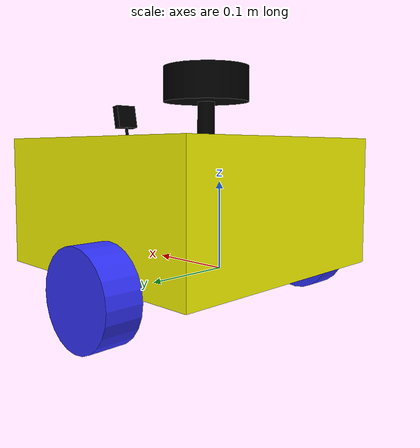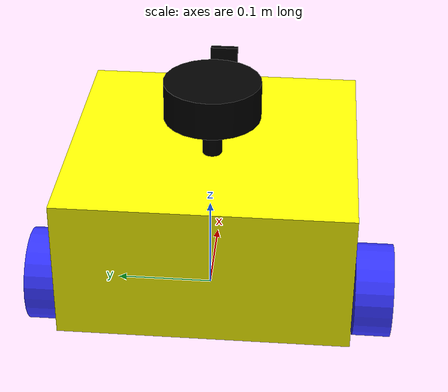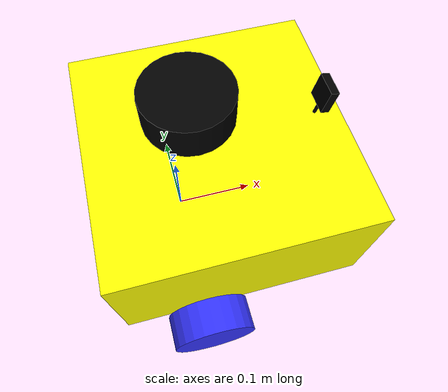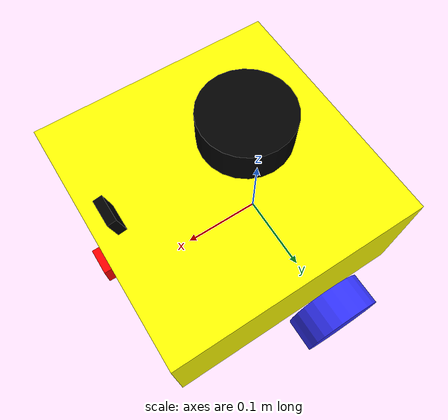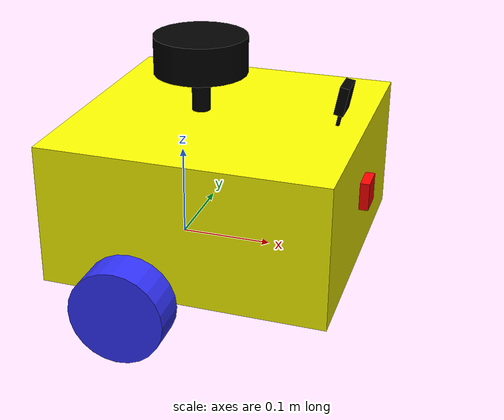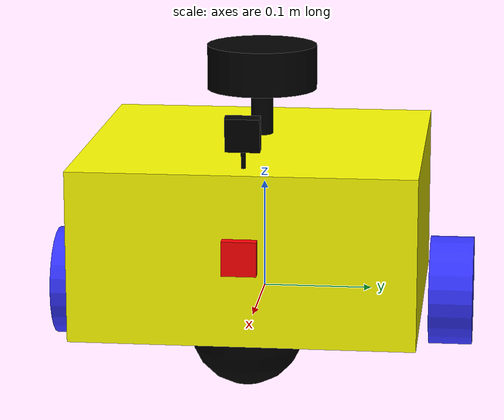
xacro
<?xml version="1.0"?>
<robot xmlns:xacro="http://www.ros.org/wiki/xacro"  name="robot">

    <xacro:include filename="robot_core.xacro" />

    <xacro:include filename="gazebo_control.xacro"/>

    <xacro:include filename="lidar.xacro"/>

    <xacro:include filename="rgb_camera.xacro"/>

    <xacro:include filename="depth_camera.xacro"/>

</robot>

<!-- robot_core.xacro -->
<robot xmlns:xacro="http://www.ros.org/wiki/xacro" >

    <xacro:include filename="inertial_macros.xacro"/>

    <material name="white">
        <color rgba="1 1 1 1" />
    </material>

    <material name="orange">
        <color rgba="1 0.3 0.1 1" />
    </material>

    <material name="blue">
        <color rgba="0.2 0.2 1 1" />
    </material>

    <material name="black">
        <color rgba="0 0 0 1" />
    </material>

    <material name="red">
        <color rgba="1 0 0 1" />
    </material>

    <material name="yellow">
        <color rgba="1 1 0 1" />
    </material>

    <!-- BASE LINK -->

    <link name="base_link">

    </link>

    <!-- BASE_FOOTPRINT LINK -->

    <joint name="base_footprint_joint" type="fixed">
        <parent link="base_link"/>
        <child link="base_footprint"/>
        <origin xyz="0 0 0" rpy="0 0 0"/>
    </joint>

    <link name="base_footprint">

    </link>

    <!-- CHASSIS LINK -->

    <joint name="chassis_joint" type="fixed">
        <parent link="base_link"/>
        <child link="chassis"/>
        <origin xyz="-0.1 0 0"/>
    </joint>

    <link name="chassis">
        <visual>
            <origin xyz="0.15 0 0.075"/>
            <geometry>
                <box size="0.3 0.3 0.15"/>
            </geometry>
            <material name="yellow"/>
        </visual>
        <collision>
            <origin xyz="0.15 0 0.075"/>
            <geometry>
                <box size="0.3 0.3 0.15"/>
            </geometry>
        </collision>
        <xacro:inertial_box mass="0.5" x="0.3" y="0.3" z="0.15">
            <origin xyz="0.15 0 0.075" rpy="0 0 0"/>
        </xacro:inertial_box>
    </link>

    <gazebo reference="chassis">
        <material>Gazebo/Yellow</material>
    </gazebo>

    <!-- LEFT WHEEL LINK -->

    <joint name="left_wheel_joint" type="continuous">
        <parent link="base_link"/>
        <child link="left_wheel"/>
        <origin xyz="0 0.175 0" rpy="-${pi/2} 0 0"/>
        <axis xyz="0 0 1"/>
    </joint>

    <link name="left_wheel">
        <visual>
            <geometry>
                <cylinder radius="0.05" length="0.04"/>
            </geometry>
            <material name="blue"/>
        </visual>
        <collision>
            <geometry>
                <cylinder radius="0.05" length="0.04"/>
            </geometry>
        </collision>
        <xacro:inertial_cylinder mass="0.1" length="0.04" radius="0.05">
            <origin xyz="0 0 0" rpy="0 0 0"/>
        </xacro:inertial_cylinder>
    </link>

    <gazebo reference="left_wheel">
        <material>Gazebo/Blue</material>
    </gazebo>

    <!-- RIGHT WHEEL LINK -->

    <joint name="right_wheel_joint" type="continuous">
        <parent link="base_link"/>
        <child link="right_wheel"/>
        <origin xyz="0 -0.175 0" rpy="${pi/2} 0 0"/>
        <axis xyz="0 0 -1"/>
    </joint>

    <link name="right_wheel">
        <visual>
            <geometry>
                <cylinder radius="0.05" length="0.04"/>
            </geometry>
            <material name="blue"/>
        </visual>
        <collision>
            <geometry>
                <cylinder radius="0.05" length="0.04"/>
            </geometry>
        </collision>
        <xacro:inertial_cylinder mass="0.1" length="0.04" radius="0.05">
            <origin xyz="0 0 0" rpy="0 0 0"/>
        </xacro:inertial_cylinder>
    </link>

    <gazebo reference="right_wheel">
        <material>Gazebo/Blue</material>
    </gazebo>

    <!-- CASTER WHEEL LINK -->

    <joint name="caster_wheel_joint" type="fixed">
        <parent link="chassis"/>
        <child link="caster_wheel"/>
        <origin xyz="0.24 0 0"/>
    </joint>

    <link name="caster_wheel">
        <visual>
            <geometry>
                <sphere radius="0.05"/>
            </geometry>
            <material name="black"/>
        </visual>
        <collision>
            <geometry>
                <sphere radius="0.05"/>
            </geometry>
        </collision>
        <xacro:inertial_sphere mass="0.1" radius="0.05">
            <origin xyz="0 0 0" rpy="0 0 0"/>
        </xacro:inertial_sphere>
    </link>

    <gazebo reference="caster_wheel">
        <material>Gazebo/Black</material>
        <mu1 value="0.001"/>
        <mu2 value="0.001"/>
    </gazebo>

</robot>

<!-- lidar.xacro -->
<robot xmlns:xacro="http://www.ros.org/wiki/xacro" >

    <joint name="laser_joint" type="fixed">
        <parent link="chassis"/>
        <child link="laser_frame"/>
        <origin xyz="0.122 0 0.212" rpy="0 0 0"/>
    </joint>

    <link name="laser_frame">
        <visual>
            <geometry>
                <cylinder radius="0.05" length="0.04"/>
            </geometry>
            <material name="black"/>
        </visual>
        <visual>
            <origin xyz="0 0 -0.05"/>
            <geometry>
                <cylinder radius="0.01" length="0.1"/>
            </geometry>
            <material name="black"/>
        </visual>
        <collision>
            <geometry>
                <cylinder radius="0.05" length="0.04"/>
            </geometry>
        </collision>
        <xacro:inertial_cylinder mass="0.1" length="0.04" radius="0.05">
            <origin xyz="0 0 0" rpy="0 0 0"/>
        </xacro:inertial_cylinder>
    </link>

    <gazebo reference="laser_frame">
        <material>Gazebo/Black</material>

        <sensor name="laser" type="gpu_lidar">
            <pose> 0 0 0 0 0 0 </pose>
            <visualize>false</visualize>
            <update_rate>10</update_rate>
            <lidar>
                <scan>
                    <horizontal>
                        <samples>360</samples>
                        <min_angle>-3.14</min_angle>
                        <max_angle>3.14</max_angle>
                    </horizontal>
                </scan>
                <range>
                    <min>0.3</min>
                    <max>12</max>
                </range>
            </lidar>
            <topic>scan</topic>
            <gz_frame_id>laser_frame</gz_frame_id>
        </sensor>
    </gazebo>

</robot>

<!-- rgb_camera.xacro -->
<robot xmlns:xacro="http://www.ros.org/wiki/xacro" >

    <joint name="rgb_camera_joint" type="fixed">
        <parent link="chassis"/>
        <child link="rgb_camera_link"/>
        <origin xyz="0.276 0 0.181" rpy="0 0.18 0"/>
    </joint>

    <link name="rgb_camera_link">
        <visual>
            <geometry>
                <box size="0.010 0.03 0.03"/>
            </geometry>
            <material name="black"/>
        </visual>
        <visual>
            <origin xyz="0 0 -0.05"/>
            <geometry>
                <cylinder radius="0.002" length="0.1"/>
            </geometry>
            <material name="black"/>
        </visual>
    </link>

    <joint name="rgb_camera_optical_joint" type="fixed">
        <parent link="rgb_camera_link"/>
        <child link="rgb_camera_link_optical"/>
        <origin xyz="0 0 0" rpy="${-pi/2} 0 ${-pi/2}"/>
    </joint>

    <link name="rgb_camera_link_optical"></link>

    <gazebo reference="rgb_camera_link">
        <material>Gazebo/Black</material>

        <sensor name="rgb_camera" type="camera">
            <pose> 0 0 0 0 0 0 </pose>
            <visualize>true</visualize>
            <update_rate>10</update_rate>
            <camera>
                <camera_info_topic>rgb_camera/camera_info</camera_info_topic>
                <horizontal_fov>1.089</horizontal_fov>
                <image>
                    <format>R8G8B8</format>
                    <width>640</width>
                    <height>480</height>
                </image>
                <clip>
                    <near>0.05</near>
                    <far>8.0</far>
                </clip>
            </camera>
            <topic>rgb_camera/image_raw</topic>
            <gz_frame_id>rgb_camera_link_optical</gz_frame_id>
        </sensor>
    </gazebo>

</robot>

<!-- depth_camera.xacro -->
<robot xmlns:xacro="http://www.ros.org/wiki/xacro">

    <!-- definice pi pro rpy -->
    <xacro:property name="pi" value="3.14159265359"/>

    <!-- depth camera joint -->
    <joint name="depth_camera_joint" type="fixed">
        <parent link="chassis"/>
        <child link="depth_camera_link"/>
        <origin xyz="0.305 0 0.08" rpy="0 0 0"/>
    </joint>

    <!-- depth camera link -->
    <link name="depth_camera_link">
        <visual>
            <geometry>
                <box size="0.01 0.03 0.03"/>
            </geometry>
            <material name="red"/>
        </visual>
    </link>

    <!-- depth_camera optical joint -->
    <joint name="depth_camera_optical_joint" type="fixed">
        <parent link="depth_camera_link"/>
        <child link="depth_camera_link_optical"/>
        <origin xyz="0 0 0" rpy="0 0 0"/>
    </joint>

    <link name="depth_camera_link_optical"/>

    <!-- Gazebo Jetty sensor -->
    <gazebo reference="depth_camera_link_optical">
        <material>Gazebo/Red</material>

        <sensor name="depth_camera" type="depth">
            <pose>0 0 0 0 0 0</pose>
            <visualize>true</visualize>
            <update_rate>10</update_rate>
            <always_on>true</always_on>

            <camera>
                <horizontal_fov>1.089</horizontal_fov>
                <image>
                    <format>R8G8B8</format>
                    <width>640</width>
                    <height>480</height>
                </image>
                <clip>
                    <near>0.05</near>
                    <far>8.0</far>
                </clip>

            </camera>

            <topic>depth_camera/depth</topic>
            <!-- DŮLEŽITÉ: Gazebo bude používat stejný frame jako link -->
            <gz_frame_id>depth_camera_link_optical</gz_frame_id>

        </sensor>
    </gazebo>

</robot>
